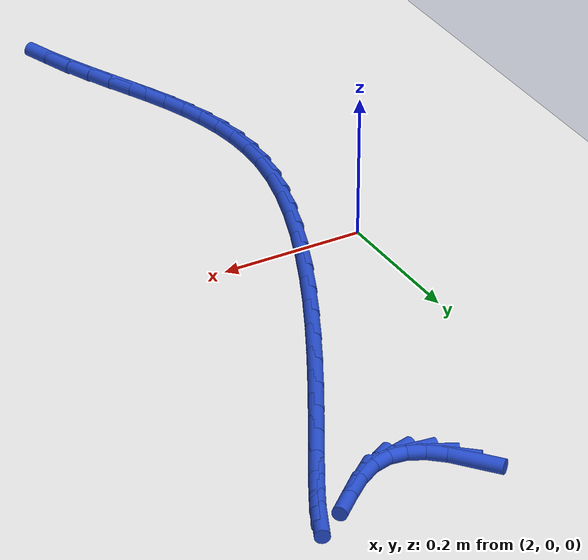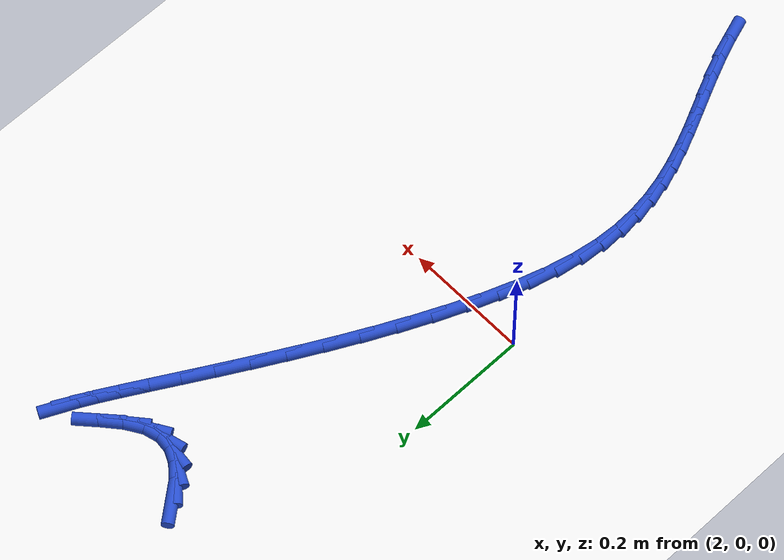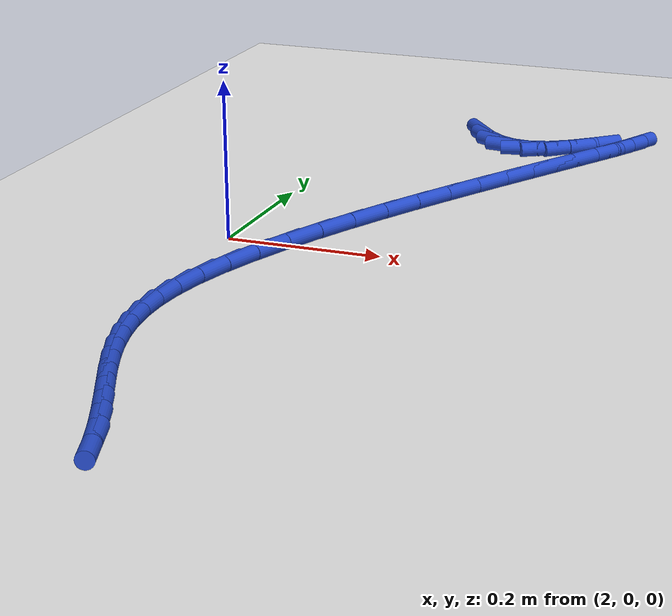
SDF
<sdf version="1.6">
 <world name="default">
  <model name="ground_plane">
   <static>1</static>
   <link name="link">
    <collision name="collision">
     <geometry><plane><normal>0 0 1</normal><size>100 100</size></plane></geometry>
     <surface><friction><ode><mu>100</mu><mu2>50</mu2></ode></friction></surface>
    </collision>
    <visual name="visual">
     <cast_shadows>0</cast_shadows>
     <geometry><plane><normal>0 0 1</normal><size>100 100</size></plane></geometry>
     <material>
      <script><uri>file://media/materials/scripts/gazebo.material</uri><name>Gazebo/WhiteGlow</name></script>
     </material>
    </visual>
   </link>
  </model>
  <model name="line">
   <link name="link_89">
    <pose>2.157141649075852 0.5331179535546526 0.01 0 1.57 -0.8941740504548429</pose>
    <collision name="collision">
     <geometry><cylinder><radius>0.01</radius><length>0.08</length></cylinder></geometry>
    </collision>
    <visual name="visual">
     <material>
      <script><name>Gazebo/Blue</name><uri>file://media/materials/scripts/gazebo.material</uri></script>
     </material>
     <geometry><cylinder><radius>0.01</radius><length>0.08</length></cylinder></geometry>
    </visual>
   </link>
   <link name="link_90">
    <pose>2.1768931938246143 0.5085235199196095 0.01 0 1.57 -0.7180036534411387</pose>
    <collision name="collision">
     <geometry><cylinder><radius>0.01</radius><length>0.08</length></cylinder></geometry>
    </collision>
    <visual name="visual">
     <material>
      <script><name>Gazebo/Blue</name><uri>file://media/materials/scripts/gazebo.material</uri></script>
     </material>
     <geometry><cylinder><radius>0.01</radius><length>0.08</length></cylinder></geometry>
    </visual>
   </link>
   <link name="link_91">
    <pose>2.1977268955750584 0.49032440566723345 0.01 0 1.57 -0.4548286662205804</pose>
    <collision name="collision">
     <geometry><cylinder><radius>0.01</radius><length>0.08</length></cylinder></geometry>
    </collision>
    <visual name="visual">
     <material>
      <script><name>Gazebo/Blue</name><uri>file://media/materials/scripts/gazebo.material</uri></script>
     </material>
     <geometry><cylinder><radius>0.01</radius><length>0.08</length></cylinder></geometry>
    </visual>
   </link>
   <link name="link_92">
    <pose>2.2198991084755844 0.4794816518155976 0.01 0 1.57 -0.10585704164938609</pose>
    <collision name="collision">
     <geometry><cylinder><radius>0.01</radius><length>0.08</length></cylinder></geometry>
    </collision>
    <visual name="visual">
     <material>
      <script><name>Gazebo/Blue</name><uri>file://media/materials/scripts/gazebo.material</uri></script>
     </material>
     <geometry><cylinder><radius>0.01</radius><length>0.08</length></cylinder></geometry>
    </visual>
   </link>
   <link name="link_93">
    <pose>2.2436661866745884 0.4769562993827754 0.01 0 1.57 0.2577410374803671</pose>
    <collision name="collision">
     <geometry><cylinder><radius>0.01</radius><length>0.08</length></cylinder></geometry>
    </collision>
    <visual name="visual">
     <material>
      <script><name>Gazebo/Blue</name><uri>file://media/materials/scripts/gazebo.material</uri></script>
     </material>
     <geometry><cylinder><radius>0.01</radius><length>0.08</length></cylinder></geometry>
    </visual>
   </link>
   <link name="link_94">
    <pose>2.269284484320471 0.4837093893868405 0.01 0 1.57 0.5468027267467966</pose>
    <collision name="collision">
     <geometry><cylinder><radius>0.01</radius><length>0.08</length></cylinder></geometry>
    </collision>
    <visual name="visual">
     <material>
      <script><name>Gazebo/Blue</name><uri>file://media/materials/scripts/gazebo.material</uri></script>
     </material>
     <geometry><cylinder><radius>0.01</radius><length>0.08</length></cylinder></geometry>
    </visual>
   </link>
   <link name="link_95">
    <pose>2.2969360927626274 0.5005413294554449 0.01 0 1.57 0.6982941191610375</pose>
    <collision name="collision">
     <geometry><cylinder><radius>0.01</radius><length>0.08</length></cylinder></geometry>
    </collision>
    <visual name="visual">
     <material>
      <script><name>Gazebo/Blue</name><uri>file://media/materials/scripts/gazebo.material</uri></script>
     </material>
     <geometry><cylinder><radius>0.01</radius><length>0.08</length></cylinder></geometry>
    </visual>
   </link>
   <link name="link_96">
    <pose>2.324807480678441 0.5239359159369134 0.01 0 1.57 0.7341363820063671</pose>
    <collision name="collision">
     <geometry><cylinder><radius>0.01</radius><length>0.08</length></cylinder></geometry>
    </collision>
    <visual name="visual">
     <material>
      <script><name>Gazebo/Blue</name><uri>file://media/materials/scripts/gazebo.material</uri></script>
     </material>
     <geometry><cylinder><radius>0.01</radius><length>0.08</length></cylinder></geometry>
    </visual>
   </link>
   <link name="link_102">
    <pose>2.3779376533379595 0.5445604334052698 0.01 0 1.57 1.1228606074238938</pose>
    <collision name="collision">
     <geometry><cylinder><radius>0.01</radius><length>0.08</length></cylinder></geometry>
    </collision>
    <visual name="visual">
     <material>
      <script><name>Gazebo/Blue</name><uri>file://media/materials/scripts/gazebo.material</uri></script>
     </material>
     <geometry><cylinder><radius>0.01</radius><length>0.08</length></cylinder></geometry>
    </visual>
   </link>
   <link name="link_103">
    <pose>2.3685761210892515 0.5250780076115963 0.01 0 1.57 1.0794451394592437</pose>
    <collision name="collision">
     <geometry><cylinder><radius>0.01</radius><length>0.08</length></cylinder></geometry>
    </collision>
    <visual name="visual">
     <material>
      <script><name>Gazebo/Blue</name><uri>file://media/materials/scripts/gazebo.material</uri></script>
     </material>
     <geometry><cylinder><radius>0.01</radius><length>0.08</length></cylinder></geometry>
    </visual>
   </link>
   <link name="link_104">
    <pose>2.3553358758948852 0.5003356668370079 0.01 0 1.57 1.0579463614711613</pose>
    <collision name="collision">
     <geometry><cylinder><radius>0.01</radius><length>0.08</length></cylinder></geometry>
    </collision>
    <visual name="visual">
     <material>
      <script><name>Gazebo/Blue</name><uri>file://media/materials/scripts/gazebo.material</uri></script>
     </material>
     <geometry><cylinder><radius>0.01</radius><length>0.08</length></cylinder></geometry>
    </visual>
   </link>
   <link name="link_105">
    <pose>2.3387209887627445 0.4708298966077815 0.01 0 1.57 1.0474913488327258</pose>
    <collision name="collision">
     <geometry><cylinder><radius>0.01</radius><length>0.08</length></cylinder></geometry>
    </collision>
    <visual name="visual">
     <material>
      <script><name>Gazebo/Blue</name><uri>file://media/materials/scripts/gazebo.material</uri></script>
     </material>
     <geometry><cylinder><radius>0.01</radius><length>0.08</length></cylinder></geometry>
    </visual>
   </link>
   <link name="link_106">
    <pose>2.319235530700714 0.4370571824501958 0.01 0 1.57 1.0436808334757843</pose>
    <collision name="collision">
     <geometry><cylinder><radius>0.01</radius><length>0.08</length></cylinder></geometry>
    </collision>
    <visual name="visual">
     <material>
      <script><name>Gazebo/Blue</name><uri>file://media/materials/scripts/gazebo.material</uri></script>
     </material>
     <geometry><cylinder><radius>0.01</radius><length>0.08</length></cylinder></geometry>
    </visual>
   </link>
   <link name="link_107">
    <pose>2.297383572716674 0.3995140098905275 0.01 0 1.57 1.0444714404436142</pose>
    <collision name="collision">
     <geometry><cylinder><radius>0.01</radius><length>0.08</length></cylinder></geometry>
    </collision>
    <visual name="visual">
     <material>
      <script><name>Gazebo/Blue</name><uri>file://media/materials/scripts/gazebo.material</uri></script>
     </material>
     <geometry><cylinder><radius>0.01</radius><length>0.08</length></cylinder></geometry>
    </visual>
   </link>
   <link name="link_108">
    <pose>2.2736691858185103 0.35869686445505394 0.01 0 1.57 1.0488615331698778</pose>
    <collision name="collision">
     <geometry><cylinder><radius>0.01</radius><length>0.08</length></cylinder></geometry>
    </collision>
    <visual name="visual">
     <material>
      <script><name>Gazebo/Blue</name><uri>file://media/materials/scripts/gazebo.material</uri></script>
     </material>
     <geometry><cylinder><radius>0.01</radius><length>0.08</length></cylinder></geometry>
    </visual>
   </link>
   <link name="link_109">
    <pose>2.2485964410141066 0.3151022316700536 0.01 0 1.57 1.0563892036087688</pose>
    <collision name="collision">
     <geometry><cylinder><radius>0.01</radius><length>0.08</length></cylinder></geometry>
    </collision>
    <visual name="visual">
     <material>
      <script><name>Gazebo/Blue</name><uri>file://media/materials/scripts/gazebo.material</uri></script>
     </material>
     <geometry><cylinder><radius>0.01</radius><length>0.08</length></cylinder></geometry>
    </visual>
   </link>
   <link name="link_110">
    <pose>2.222669409311345 0.269226597061803 0.01 0 1.57 1.06692008015075</pose>
    <collision name="collision">
     <geometry><cylinder><radius>0.01</radius><length>0.08</length></cylinder></geometry>
    </collision>
    <visual name="visual">
     <material>
      <script><name>Gazebo/Blue</name><uri>file://media/materials/scripts/gazebo.material</uri></script>
     </material>
     <geometry><cylinder><radius>0.01</radius><length>0.08</length></cylinder></geometry>
    </visual>
   </link>
   <link name="link_111">
    <pose>2.1963921617181104 0.22156644615658103 0.01 0 1.57 1.0805575852030966</pose>
    <collision name="collision">
     <geometry><cylinder><radius>0.01</radius><length>0.08</length></cylinder></geometry>
    </collision>
    <visual name="visual">
     <material>
      <script><name>Gazebo/Blue</name><uri>file://media/materials/scripts/gazebo.material</uri></script>
     </material>
     <geometry><cylinder><radius>0.01</radius><length>0.08</length></cylinder></geometry>
    </visual>
   </link>
   <link name="link_112">
    <pose>2.1702687692422864 0.172618264480664 0.01 0 1.57 1.09761515940991</pose>
    <collision name="collision">
     <geometry><cylinder><radius>0.01</radius><length>0.08</length></cylinder></geometry>
    </collision>
    <visual name="visual">
     <material>
      <script><name>Gazebo/Blue</name><uri>file://media/materials/scripts/gazebo.material</uri></script>
     </material>
     <geometry><cylinder><radius>0.01</radius><length>0.08</length></cylinder></geometry>
    </visual>
   </link>
   <link name="link_113">
    <pose>2.1448033028917544 0.12287853756033054 0.01 0 1.57 1.1186285807170757</pose>
    <collision name="collision">
     <geometry><cylinder><radius>0.01</radius><length>0.08</length></cylinder></geometry>
    </collision>
    <visual name="visual">
     <material>
      <script><name>Gazebo/Blue</name><uri>file://media/materials/scripts/gazebo.material</uri></script>
     </material>
     <geometry><cylinder><radius>0.01</radius><length>0.08</length></cylinder></geometry>
    </visual>
   </link>
   <link name="link_114">
    <pose>2.1204998336744 0.07284375092185726 0.01 0 1.57 1.144403794544604</pose>
    <collision name="collision">
     <geometry><cylinder><radius>0.01</radius><length>0.08</length></cylinder></geometry>
    </collision>
    <visual name="visual">
     <material>
      <script><name>Gazebo/Blue</name><uri>file://media/materials/scripts/gazebo.material</uri></script>
     </material>
     <geometry><cylinder><radius>0.01</radius><length>0.08</length></cylinder></geometry>
    </visual>
   </link>
   <link name="link_115">
    <pose>2.0978624325981063 0.02301039009152278 0.01 0 1.57 1.1761065195677682</pose>
    <collision name="collision">
     <geometry><cylinder><radius>0.01</radius><length>0.08</length></cylinder></geometry>
    </collision>
    <visual name="visual">
     <material>
      <script><name>Gazebo/Blue</name><uri>file://media/materials/scripts/gazebo.material</uri></script>
     </material>
     <geometry><cylinder><radius>0.01</radius><length>0.08</length></cylinder></geometry>
    </visual>
   </link>
   <link name="link_116">
    <pose>2.0773951706707567 -0.026125059404395815 0.01 0 1.57 1.215410212377661</pose>
    <collision name="collision">
     <geometry><cylinder><radius>0.01</radius><length>0.08</length></cylinder></geometry>
    </collision>
    <visual name="visual">
     <material>
      <script><name>Gazebo/Blue</name><uri>file://media/materials/scripts/gazebo.material</uri></script>
     </material>
     <geometry><cylinder><radius>0.01</radius><length>0.08</length></cylinder></geometry>
    </visual>
   </link>
   <link name="link_117">
    <pose>2.059602118900234 -0.07406611203962227 0.01 0 1.57 1.264731598354494</pose>
    <collision name="collision">
     <geometry><cylinder><radius>0.01</radius><length>0.08</length></cylinder></geometry>
    </collision>
    <visual name="visual">
     <material>
      <script><name>Gazebo/Blue</name><uri>file://media/materials/scripts/gazebo.material</uri></script>
     </material>
     <geometry><cylinder><radius>0.01</radius><length>0.08</length></cylinder></geometry>
    </visual>
   </link>
   <link name="link_118">
    <pose>2.0449873482944225 -0.12031628228787648 0.01 0 1.57 1.3275973505690435</pose>
    <collision name="collision">
     <geometry><cylinder><radius>0.01</radius><length>0.08</length></cylinder></geometry>
    </collision>
    <visual name="visual">
     <material>
      <script><name>Gazebo/Blue</name><uri>file://media/materials/scripts/gazebo.material</uri></script>
     </material>
     <geometry><cylinder><radius>0.01</radius><length>0.08</length></cylinder></geometry>
    </visual>
   </link>
   <link name="link_119">
    <pose>2.034054929861205 -0.16437908462288217 0.01 0 1.57 1.408565103451966</pose>
    <collision name="collision">
     <geometry><cylinder><radius>0.01</radius><length>0.08</length></cylinder></geometry>
    </collision>
    <visual name="visual">
     <material>
      <script><name>Gazebo/Blue</name><uri>file://media/materials/scripts/gazebo.material</uri></script>
     </material>
     <geometry><cylinder><radius>0.01</radius><length>0.08</length></cylinder></geometry>
    </visual>
   </link>
   <link name="link_120">
    <pose>2.0272776988534607 -0.2057870806009427 0.01 0 1.57 1.5025002514548464</pose>
    <collision name="collision">
     <geometry><cylinder><radius>0.01</radius><length>0.08</length></cylinder></geometry>
    </collision>
    <visual name="visual">
     <material>
      <script><name>Gazebo/Blue</name><uri>file://media/materials/scripts/gazebo.material</uri></script>
     </material>
     <geometry><cylinder><radius>0.01</radius><length>0.08</length></cylinder></geometry>
    </visual>
   </link>
   <link name="link_121">
    <pose>2.0246269569930937 -0.24453922312663356 0.01 0 1.57 -1.5422139666270025</pose>
    <collision name="collision">
     <geometry><cylinder><radius>0.01</radius><length>0.08</length></cylinder></geometry>
    </collision>
    <visual name="visual">
     <material>
      <script><name>Gazebo/Blue</name><uri>file://media/materials/scripts/gazebo.material</uri></script>
     </material>
     <geometry><cylinder><radius>0.01</radius><length>0.08</length></cylinder></geometry>
    </visual>
   </link>
   <link name="link_122">
    <pose>2.0256696751220717 -0.28101046473884517 0.01 0 1.57 -1.4473060621449854</pose>
    <collision name="collision">
     <geometry><cylinder><radius>0.01</radius><length>0.08</length></cylinder></geometry>
    </collision>
    <visual name="visual">
     <material>
      <script><name>Gazebo/Blue</name><uri>file://media/materials/scripts/gazebo.material</uri></script>
     </material>
     <geometry><cylinder><radius>0.01</radius><length>0.08</length></cylinder></geometry>
    </visual>
   </link>
   <link name="link_123">
    <pose>2.029961312144076 -0.31558646327947526 0.01 0 1.57 -1.3594036086351315</pose>
    <collision name="collision">
     <geometry><cylinder><radius>0.01</radius><length>0.08</length></cylinder></geometry>
    </collision>
    <visual name="visual">
     <material>
      <script><name>Gazebo/Blue</name><uri>file://media/materials/scripts/gazebo.material</uri></script>
     </material>
     <geometry><cylinder><radius>0.01</radius><length>0.08</length></cylinder></geometry>
    </visual>
   </link>
   <link name="link_124">
    <pose>2.0370573269627874 -0.3486528765904245 0.01 0 1.57 -1.2829880792591568</pose>
    <collision name="collision">
     <geometry><cylinder><radius>0.01</radius><length>0.08</length></cylinder></geometry>
    </collision>
    <visual name="visual">
     <material>
      <script><name>Gazebo/Blue</name><uri>file://media/materials/scripts/gazebo.material</uri></script>
     </material>
     <geometry><cylinder><radius>0.01</radius><length>0.08</length></cylinder></geometry>
    </visual>
   </link>
   <link name="link_125">
    <pose>2.046513178481887 -0.3805953625135922 0.01 0 1.57 -1.221341681243291</pose>
    <collision name="collision">
     <geometry><cylinder><radius>0.01</radius><length>0.08</length></cylinder></geometry>
    </collision>
    <visual name="visual">
     <material>
      <script><name>Gazebo/Blue</name><uri>file://media/materials/scripts/gazebo.material</uri></script>
     </material>
     <geometry><cylinder><radius>0.01</radius><length>0.08</length></cylinder></geometry>
    </visual>
   </link>
   <link name="link_126">
    <pose>2.057884325605056 -0.4117995788908789 0.01 0 1.57 -1.1763624665624504</pose>
    <collision name="collision">
     <geometry><cylinder><radius>0.01</radius><length>0.08</length></cylinder></geometry>
    </collision>
    <visual name="visual">
     <material>
      <script><name>Gazebo/Blue</name><uri>file://media/materials/scripts/gazebo.material</uri></script>
     </material>
     <geometry><cylinder><radius>0.01</radius><length>0.08</length></cylinder></geometry>
    </visual>
   </link>
   <link name="link_127">
    <pose>2.070726227235974 -0.4426511835641827 0.01 0 1.57 -1.1487498773450049</pose>
    <collision name="collision">
     <geometry><cylinder><radius>0.01</radius><length>0.08</length></cylinder></geometry>
    </collision>
    <visual name="visual">
     <material>
      <script><name>Gazebo/Blue</name><uri>file://media/materials/scripts/gazebo.material</uri></script>
     </material>
     <geometry><cylinder><radius>0.01</radius><length>0.08</length></cylinder></geometry>
    </visual>
   </link>
   <link name="link_128">
    <pose>2.0845943422783235 -0.4735358343754038 0.01 0 1.57 -1.1383336391985026</pose>
    <collision name="collision">
     <geometry><cylinder><radius>0.01</radius><length>0.08</length></cylinder></geometry>
    </collision>
    <visual name="visual">
     <material>
      <script><name>Gazebo/Blue</name><uri>file://media/materials/scripts/gazebo.material</uri></script>
     </material>
     <geometry><cylinder><radius>0.01</radius><length>0.08</length></cylinder></geometry>
    </visual>
   </link>
   <link name="link_129">
    <pose>2.099044129635785 -0.504839189166442 0.01 0 1.57 -1.144362391411016</pose>
    <collision name="collision">
     <geometry><cylinder><radius>0.01</radius><length>0.08</length></cylinder></geometry>
    </collision>
    <visual name="visual">
     <material>
      <script><name>Gazebo/Blue</name><uri>file://media/materials/scripts/gazebo.material</uri></script>
     </material>
     <geometry><cylinder><radius>0.01</radius><length>0.08</length></cylinder></geometry>
    </visual>
   </link>
   <link name="link_130">
    <pose>2.113631048212039 -0.5369469057791967 0.01 0 1.57 -1.1656749397359225</pose>
    <collision name="collision">
     <geometry><cylinder><radius>0.01</radius><length>0.08</length></cylinder></geometry>
    </collision>
    <visual name="visual">
     <material>
      <script><name>Gazebo/Blue</name><uri>file://media/materials/scripts/gazebo.material</uri></script>
     </material>
     <geometry><cylinder><radius>0.01</radius><length>0.08</length></cylinder></geometry>
    </visual>
   </link>
   <link name="link_131">
    <pose>2.1279105569107672 -0.5702446420555684 0.01 0 1.57 -1.2007603051469034</pose>
    <collision name="collision">
     <geometry><cylinder><radius>0.01</radius><length>0.08</length></cylinder></geometry>
    </collision>
    <visual name="visual">
     <material>
      <script><name>Gazebo/Blue</name><uri>file://media/materials/scripts/gazebo.material</uri></script>
     </material>
     <geometry><cylinder><radius>0.01</radius><length>0.08</length></cylinder></geometry>
    </visual>
   </link>
   <link name="link_132">
    <pose>2.1414381146356494 -0.605118055837455 0.01 0 1.57 -1.2477133502080922</pose>
    <collision name="collision">
     <geometry><cylinder><radius>0.01</radius><length>0.08</length></cylinder></geometry>
    </collision>
    <visual name="visual">
     <material>
      <script><name>Gazebo/Blue</name><uri>file://media/materials/scripts/gazebo.material</uri></script>
     </material>
     <geometry><cylinder><radius>0.01</radius><length>0.08</length></cylinder></geometry>
    </visual>
   </link>
  </model>
 </world>
</sdf>
